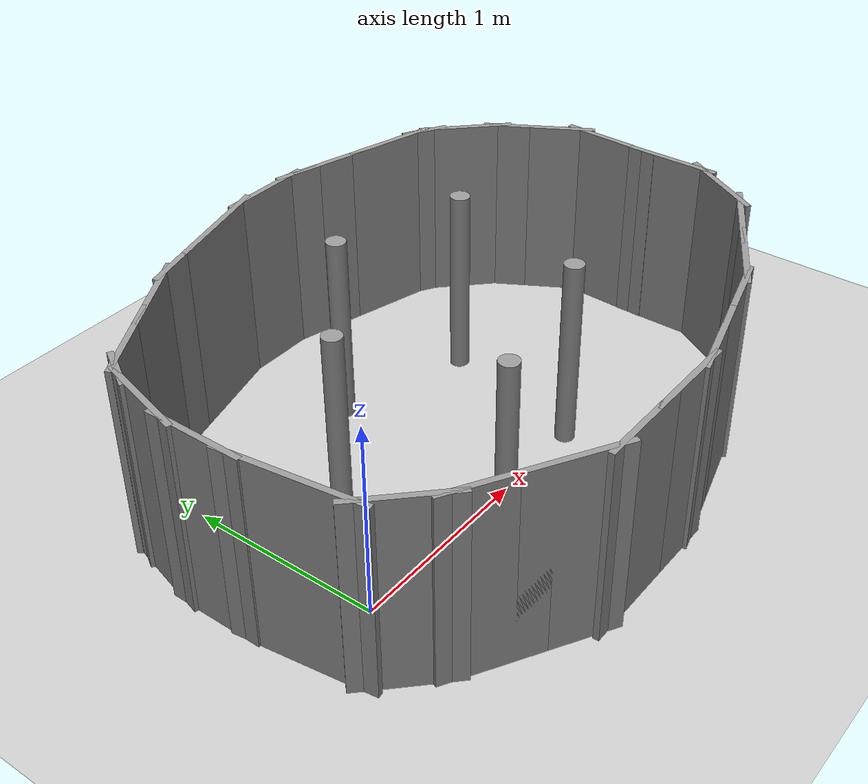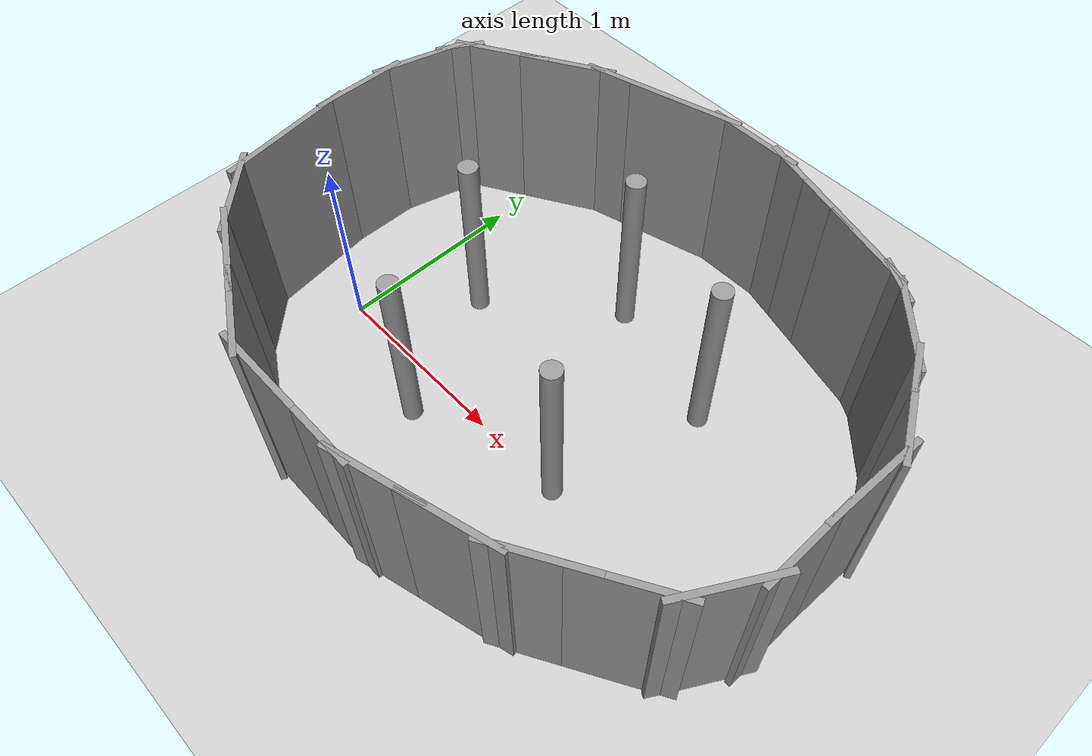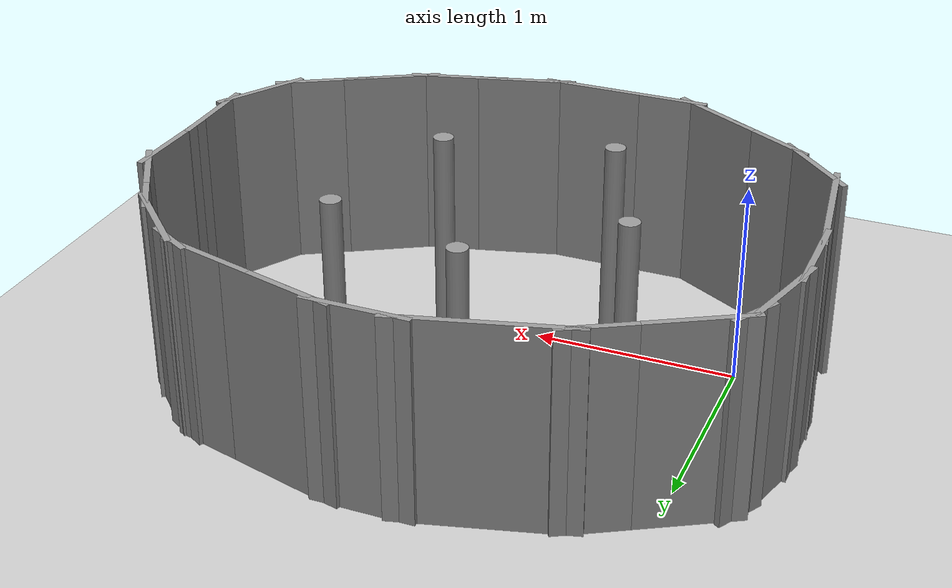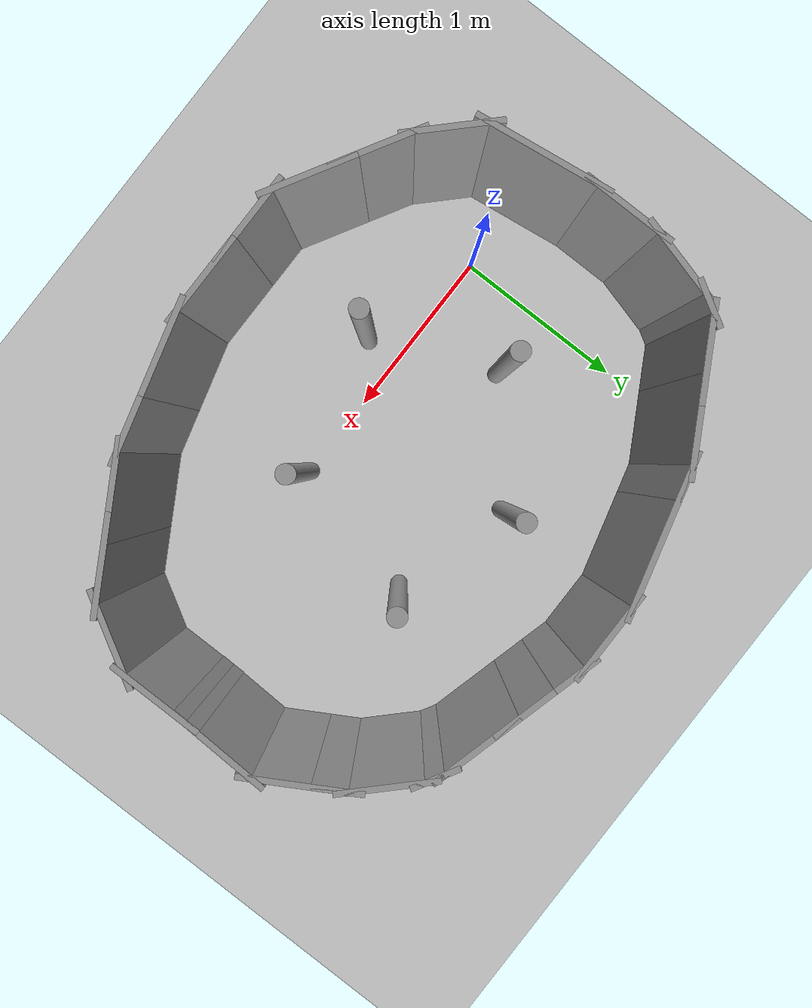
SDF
<?xml version="1.0" ?>
<sdf version='1.6'>
  <world name='default'>
    <model name='cylinder'>
      <pose frame=''>0.4 0.5 0 0 0 0</pose>
      <link name='Cylinder'>
        <collision name='Cylinder_Collision'>
          <geometry>
            <cylinder>
              <radius>0.05</radius>
              <length>1</length>
            </cylinder>
          </geometry>
          <pose frame=''>0 0 0.5 0 -0 0</pose>
        </collision>
        <visual name='Cylinder_Visual'>
          <pose frame=''>0 0 0.5 0 -0 0</pose>
          <geometry>
            <cylinder>
              <radius>0.05</radius>
              <length>1</length>
            </cylinder>
          </geometry>
          <material>
            <script>
              <uri>file://media/materials/scripts/gazebo.material</uri>
              <name>Gazebo/Grey</name>
            </script>
            <ambient>1 1 1 1</ambient>
          </material>
          <meta>
            <layer>0</layer>
          </meta>
        </visual>
      </link>
    </model>
    <model name='cylinder_1'>
      <link name='Cylinder_1'>
        <collision name='Cylinder_Collision_1'>
          <geometry>
            <cylinder>
              <radius>0.05</radius>
              <length>1</length>
            </cylinder>
          </geometry>
          <pose frame=''>0 0 0.5 0 -0 0</pose>
        </collision>
        <visual name='Cylinder_Visual_1'>
          <pose frame=''>0 0 0.5 0 -0 0</pose>
          <geometry>
            <cylinder>
              <radius>0.05</radius>
              <length>1</length>
            </cylinder>
          </geometry>
          <material>
            <script>
              <uri>file://media/materials/scripts/gazebo.material</uri>
              <name>Gazebo/Grey</name>
            </script>
            <ambient>1 1 1 1</ambient>
          </material>
          <meta>
            <layer>0</layer>
          </meta>
        </visual>
      </link>
      <pose frame=''>1.7 0.8 0 0 0 0</pose>
    </model>
    <model name='cylinder_2'>
      <link name='Cylinder'>
        <collision name='Cylinder_Collision'>
          <geometry>
            <cylinder>
              <radius>0.05</radius>
              <length>1</length>
            </cylinder>
          </geometry>
          <pose frame=''>0 0 0.5 0 -0 0</pose>
        </collision>
        <visual name='Cylinder_Visual'>
          <pose frame=''>0 0 0.5 0 -0 0</pose>
          <geometry>
            <cylinder>
              <radius>0.05</radius>
              <length>1</length>
            </cylinder>
          </geometry>
          <material>
            <script>
              <uri>file://media/materials/scripts/gazebo.material</uri>
              <name>Gazebo/Grey</name>
            </script>
            <ambient>1 1 1 1</ambient>
          </material>
          <meta>
            <layer>0</layer>
          </meta>
        </visual>
      </link>
      <pose frame=''>1.5 0 0 0 0 0</pose>
    </model>
    <model name='cylinder_3'>
      <link name='Cylinder'>
        <collision name='Cylinder_Collision'>
          <geometry>
            <cylinder>
              <radius>0.05</radius>
              <length>1</length>
            </cylinder>
          </geometry>
          <pose frame=''>0 0 0.5 0 -0 0</pose>
        </collision>
        <visual name='Cylinder_Visual'>
          <pose frame=''>0 0 0.5 0 -0 0</pose>
          <geometry>
            <cylinder>
              <radius>0.05</radius>
              <length>1</length>
            </cylinder>
          </geometry>
          <material>
            <script>
              <uri>file://media/materials/scripts/gazebo.material</uri>
              <name>Gazebo/Grey</name>
            </script>
            <ambient>1 1 1 1</ambient>
          </material>
          <meta>
            <layer>0</layer>
          </meta>
        </visual>
      </link>
      <pose frame=''>1 1 0 0 0 0</pose>
    </model>
    <model name='cylinder_4'>
      <link name='Cylinder'>
        <collision name='Cylinder_Collision'>
          <geometry>
            <cylinder>
              <radius>0.05</radius>
              <length>1</length>
            </cylinder>
          </geometry>
          <pose frame=''>0 0 0.5 0 -0 0</pose>
        </collision>
        <visual name='Cylinder_Visual'>
          <pose frame=''>0 0 0.5 0 -0 0</pose>
          <geometry>
            <cylinder>
              <radius>0.05</radius>
              <length>1</length>
            </cylinder>
          </geometry>
          <material>
            <script>
              <uri>file://media/materials/scripts/gazebo.material</uri>
              <name>Gazebo/Grey</name>
            </script>
            <ambient>1 1 1 1</ambient>
          </material>
          <meta>
            <layer>0</layer>
          </meta>
        </visual>
      </link>
      <pose frame=''>0.7 -0.2 0 0 0 0</pose>
    </model>
    <include><uri>model://round</uri></include>
    <light name='sun' type='directional'>
      <cast_shadows>1</cast_shadows>
      <pose frame=''>0 0 10 0 -0 0</pose>
      <diffuse>0.8 0.8 0.8 1</diffuse>
      <specular>0.2 0.2 0.2 1</specular>
      <attenuation>
        <range>1000</range>
        <constant>0.9</constant>
        <linear>0.01</linear>
        <quadratic>0.001</quadratic>
      </attenuation>
      <direction>-0.5 0.1 -0.9</direction>
    </light>
    <model name='ground_plane'>
      <static>1</static>
      <link name='link'>
        <collision name='collision'>
          <geometry>
            <plane>
              <normal>0 0 1</normal>
              <size>200 200</size>
            </plane>
          </geometry>
          <surface>
            <friction>
              <ode>
                <mu>100</mu>
                <mu2>50</mu2>
              </ode>
              <torsional>
                <ode/>
              </torsional>
            </friction>
            <contact>
              <ode/>
            </contact>
            <bounce/>
          </surface>
          <max_contacts>10</max_contacts>
        </collision>
        <visual name='visual'>
          <cast_shadows>0</cast_shadows>
          <geometry>
            <plane>
              <normal>0 0 1</normal>
              <size>200 200</size>
            </plane>
          </geometry>
          <material>
            <script>
              <uri>file://media/materials/scripts/gazebo.material</uri>
              <name>Gazebo/Grey</name>
            </script>
          </material>
        </visual>
        <self_collide>0</self_collide>
        <kinematic>0</kinematic>
      </link>
      <pose>0 0 0 0 0 0</pose>
    </model>
    <gravity>0 0 -9.8</gravity>
    <magnetic_field>6e-06 2.3e-05 -4.2e-05</magnetic_field>
    <atmosphere type='adiabatic'/>
    <physics name='default_physics' default='0' type='ode'>
      <max_step_size>0.001</max_step_size>
      <real_time_factor>1</real_time_factor>
      <real_time_update_rate>1000</real_time_update_rate>
    </physics>
    <scene>
      <ambient>0.4 0.4 0.4 1</ambient>
      <background>0.7 0.7 0.7 1</background>
      <shadows>1</shadows>
    </scene>
    <spherical_coordinates>
      <surface_model>EARTH_WGS84</surface_model>
      <latitude_deg>0</latitude_deg>
      <longitude_deg>0</longitude_deg>
      <elevation>0</elevation>
      <heading_deg>0</heading_deg>
    </spherical_coordinates>
    <gui fullscreen='0'>
      <camera name='user_camera'>
        <pose frame=''>2 -24 12 0 0.332 1.62</pose>
        <view_controller>orbit</view_controller>
        <projection_type>perspective</projection_type>
      </camera>
    </gui>
  </world>
</sdf>

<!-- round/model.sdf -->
<sdf version='1.6'>
  <model name='round'>
    <pose frame=''>1.14 0.38 0 0 -0 0</pose>
    <link name='Wall_20'>
      <collision name='Wall_20_Collision'>
        <geometry>
          <box>
            <size>0.5 0.03 1</size>
          </box>
        </geometry>
        <pose frame=''>0 0 0.5 0 -0 0</pose>
      </collision>
      <visual name='Wall_20_Visual'>
        <pose frame=''>0 0 0.5 0 -0 0</pose>
        <geometry>
          <box>
            <size>0.5 0.03 1</size>
          </box>
        </geometry>
        <material>
          <script>
            <uri>file://media/materials/scripts/gazebo.material</uri>
            <name>Gazebo/Grey</name>
          </script>
          <ambient>1 1 1 1</ambient>
        </material>
        <meta>
          <layer>0</layer>
        </meta>
      </visual>
      <pose frame=''>-1.55769 0.109514 0 0 -0 1.5708</pose>
    </link>
    <link name='Wall_21'>
      <collision name='Wall_21_Collision'>
        <geometry>
          <box>
            <size>0.5 0.03 1</size>
          </box>
        </geometry>
        <pose frame=''>0 0 0.5 0 -0 0</pose>
      </collision>
      <visual name='Wall_21_Visual'>
        <pose frame=''>0 0 0.5 0 -0 0</pose>
        <geometry>
          <box>
            <size>0.5 0.03 1</size>
          </box>
        </geometry>
        <material>
          <script>
            <uri>file://media/materials/scripts/gazebo.material</uri>
            <name>Gazebo/Grey</name>
          </script>
          <ambient>1 1 1 1</ambient>
        </material>
        <meta>
          <layer>0</layer>
        </meta>
      </visual>
      <pose frame=''>-1.5124 0.453551 0 0 -0 1.309</pose>
    </link>
    <link name='Wall_22'>
      <collision name='Wall_22_Collision'>
        <geometry>
          <box>
            <size>0.25 0.03 1</size>
          </box>
        </geometry>
        <pose frame=''>0 0 0.5 0 -0 0</pose>
      </collision>
      <visual name='Wall_22_Visual'>
        <pose frame=''>0 0 0.5 0 -0 0</pose>
        <geometry>
          <box>
            <size>0.25 0.03 1</size>
          </box>
        </geometry>
        <material>
          <script>
            <uri>file://media/materials/scripts/gazebo.material</uri>
            <name>Gazebo/Grey</name>
          </script>
          <ambient>1 1 1 1</ambient>
        </material>
        <meta>
          <layer>0</layer>
        </meta>
      </visual>
      <pose frame=''>-1.4421 0.66589 0 0 -0 1.0472</pose>
    </link>
    <link name='Wall_23'>
      <collision name='Wall_23_Collision'>
        <geometry>
          <box>
            <size>0.5 0.03 1</size>
          </box>
        </geometry>
        <pose frame=''>0 0 0.5 0 -0 0</pose>
      </collision>
      <visual name='Wall_23_Visual'>
        <pose frame=''>0 0 0.5 0 -0 0</pose>
        <geometry>
          <box>
            <size>0.5 0.03 1</size>
          </box>
        </geometry>
        <material>
          <script>
            <uri>file://media/materials/scripts/gazebo.material</uri>
            <name>Gazebo/Grey</name>
          </script>
          <ambient>1 1 1 1</ambient>
        </material>
        <meta>
          <layer>0</layer>
        </meta>
      </visual>
      <pose frame=''>-1.26555 0.796691 0 0 -0 0.523599</pose>
    </link>
    <link name='Wall_24'>
      <collision name='Wall_24_Collision'>
        <geometry>
          <box>
            <size>0.5 0.03 1</size>
          </box>
        </geometry>
        <pose frame=''>0 0 0.5 0 -0 0</pose>
      </collision>
      <visual name='Wall_24_Visual'>
        <pose frame=''>0 0 0.5 0 -0 0</pose>
        <geometry>
          <box>
            <size>0.5 0.03 1</size>
          </box>
        </geometry>
        <material>
          <script>
            <uri>file://media/materials/scripts/gazebo.material</uri>
            <name>Gazebo/Grey</name>
          </script>
          <ambient>1 1 1 1</ambient>
        </material>
        <meta>
          <layer>0</layer>
        </meta>
      </visual>
      <pose frame=''>-0.96244 0.971691 0 0 -0 0.523599</pose>
    </link>
    <link name='Wall_25'>
      <collision name='Wall_25_Collision'>
        <geometry>
          <box>
            <size>0.25 0.03 1</size>
          </box>
        </geometry>
        <pose frame=''>0 0 0.5 0 -0 0</pose>
      </collision>
      <visual name='Wall_25_Visual'>
        <pose frame=''>0 0 0.5 0 -0 0</pose>
        <geometry>
          <box>
            <size>0.25 0.03 1</size>
          </box>
        </geometry>
        <material>
          <script>
            <uri>file://media/materials/scripts/gazebo.material</uri>
            <name>Gazebo/Grey</name>
          </script>
          <ambient>1 1 1 1</ambient>
        </material>
        <meta>
          <layer>0</layer>
        </meta>
      </visual>
      <pose frame=''>-0.762589 1.07213 0 0 -0 0.261799</pose>
    </link>
    <link name='Wall_26'>
      <collision name='Wall_26_Collision'>
        <geometry>
          <box>
            <size>0.75 0.03 1</size>
          </box>
        </geometry>
        <pose frame=''>0 0 0.5 0 -0 0</pose>
      </collision>
      <visual name='Wall_26_Visual'>
        <pose frame=''>0 0 0.5 0 -0 0</pose>
        <geometry>
          <box>
            <size>0.75 0.03 1</size>
          </box>
        </geometry>
        <material>
          <script>
            <uri>file://media/materials/scripts/gazebo.material</uri>
            <name>Gazebo/Grey</name>
          </script>
          <ambient>1 1 1 1</ambient>
        </material>
        <meta>
          <layer>0</layer>
        </meta>
      </visual>
      <pose frame=''>-0.424515 1.16272 0 0 -0 0.261799</pose>
    </link>
    <link name='Wall_27'>
      <collision name='Wall_27_Collision'>
        <geometry>
          <box>
            <size>0.5 0.03 1</size>
          </box>
        </geometry>
        <pose frame=''>0 0 0.5 0 -0 0</pose>
      </collision>
      <visual name='Wall_27_Visual'>
        <pose frame=''>0 0 0.5 0 -0 0</pose>
        <geometry>
          <box>
            <size>0.5 0.03 1</size>
          </box>
        </geometry>
        <material>
          <script>
            <uri>file://media/materials/scripts/gazebo.material</uri>
            <name>Gazebo/Grey</name>
          </script>
          <ambient>1 1 1 1</ambient>
        </material>
        <meta>
          <layer>0</layer>
        </meta>
      </visual>
      <pose frame=''>0.040263 1.24036 0 0 -0 0</pose>
    </link>
    <link name='Wall_28'>
      <collision name='Wall_28_Collision'>
        <geometry>
          <box>
            <size>0.25 0.03 1</size>
          </box>
        </geometry>
        <pose frame=''>0 0 0.5 0 -0 0</pose>
      </collision>
      <visual name='Wall_28_Visual'>
        <pose frame=''>0 0 0.5 0 -0 0</pose>
        <geometry>
          <box>
            <size>0.25 0.03 1</size>
          </box>
        </geometry>
        <material>
          <script>
            <uri>file://media/materials/scripts/gazebo.material</uri>
            <name>Gazebo/Grey</name>
          </script>
          <ambient>1 1 1 1</ambient>
        </material>
        <meta>
          <layer>0</layer>
        </meta>
      </visual>
      <pose frame=''>0.263559 1.22742 0 0 0 -0.261799</pose>
    </link>
    <link name='Wall_29'>
      <collision name='Wall_29_Collision'>
        <geometry>
          <box>
            <size>0.5 0.03 1</size>
          </box>
        </geometry>
        <pose frame=''>0 0 0.5 0 -0 0</pose>
      </collision>
      <visual name='Wall_29_Visual'>
        <pose frame=''>0 0 0.5 0 -0 0</pose>
        <geometry>
          <box>
            <size>0.5 0.03 1</size>
          </box>
        </geometry>
        <material>
          <script>
            <uri>file://media/materials/scripts/gazebo.material</uri>
            <name>Gazebo/Grey</name>
          </script>
          <ambient>1 1 1 1</ambient>
        </material>
        <meta>
          <layer>0</layer>
        </meta>
      </visual>
      <pose frame=''>0.480893 1.16919 0 0 0 -0.261799</pose>
    </link>
    <link name='Wall_30'>
      <collision name='Wall_30_Collision'>
        <geometry>
          <box>
            <size>0.5 0.03 1</size>
          </box>
        </geometry>
        <pose frame=''>0 0 0.5 0 -0 0</pose>
      </collision>
      <visual name='Wall_30_Visual'>
        <pose frame=''>0 0 0.5 0 -0 0</pose>
        <geometry>
          <box>
            <size>0.5 0.03 1</size>
          </box>
        </geometry>
        <material>
          <script>
            <uri>file://media/materials/scripts/gazebo.material</uri>
            <name>Gazebo/Grey</name>
          </script>
          <ambient>1 1 1 1</ambient>
        </material>
        <meta>
          <layer>0</layer>
        </meta>
      </visual>
      <pose frame=''>0.818967 1.0786 0 0 0 -0.261799</pose>
    </link>
    <link name='Wall_31'>
      <collision name='Wall_31_Collision'>
        <geometry>
          <box>
            <size>0.25 0.03 1</size>
          </box>
        </geometry>
        <pose frame=''>0 0 0.5 0 -0 0</pose>
      </collision>
      <visual name='Wall_31_Visual'>
        <pose frame=''>0 0 0.5 0 -0 0</pose>
        <geometry>
          <box>
            <size>0.25 0.03 1</size>
          </box>
        </geometry>
        <material>
          <script>
            <uri>file://media/materials/scripts/gazebo.material</uri>
            <name>Gazebo/Grey</name>
          </script>
          <ambient>1 1 1 1</ambient>
        </material>
        <meta>
          <layer>0</layer>
        </meta>
      </visual>
      <pose frame=''>1.0313 1.00831 0 0 0 -0.523599</pose>
    </link>
    <link name='Wall_32'>
      <collision name='Wall_32_Collision'>
        <geometry>
          <box>
            <size>0.5 0.03 1</size>
          </box>
        </geometry>
        <pose frame=''>0 0 0.5 0 -0 0</pose>
      </collision>
      <visual name='Wall_32_Visual'>
        <pose frame=''>0 0 0.5 0 -0 0</pose>
        <geometry>
          <box>
            <size>0.5 0.03 1</size>
          </box>
        </geometry>
        <material>
          <script>
            <uri>file://media/materials/scripts/gazebo.material</uri>
            <name>Gazebo/Grey</name>
          </script>
          <ambient>1 1 1 1</ambient>
        </material>
        <meta>
          <layer>0</layer>
        </meta>
      </visual>
      <pose frame=''>1.19835 0.859565 0 0 0 -0.785398</pose>
    </link>
    <link name='Wall_33'>
      <collision name='Wall_33_Collision'>
        <geometry>
          <box>
            <size>0.25 0.03 1</size>
          </box>
        </geometry>
        <pose frame=''>0 0 0.5 0 -0 0</pose>
      </collision>
      <visual name='Wall_33_Visual'>
        <pose frame=''>0 0 0.5 0 -0 0</pose>
        <geometry>
          <box>
            <size>0.25 0.03 1</size>
          </box>
        </geometry>
        <material>
          <script>
            <uri>file://media/materials/scripts/gazebo.material</uri>
            <name>Gazebo/Grey</name>
          </script>
          <ambient>1 1 1 1</ambient>
        </material>
        <meta>
          <layer>0</layer>
        </meta>
      </visual>
      <pose frame=''>1.34709 0.69252 0 0 0 -1.0472</pose>
    </link>
    <link name='Wall_34'>
      <collision name='Wall_34_Collision'>
        <geometry>
          <box>
            <size>0.5 0.03 1</size>
          </box>
        </geometry>
        <pose frame=''>0 0 0.5 0 -0 0</pose>
      </collision>
      <visual name='Wall_34_Visual'>
        <pose frame=''>0 0 0.5 0 -0 0</pose>
        <geometry>
          <box>
            <size>0.5 0.03 1</size>
          </box>
        </geometry>
        <material>
          <script>
            <uri>file://media/materials/scripts/gazebo.material</uri>
            <name>Gazebo/Grey</name>
          </script>
          <ambient>1 1 1 1</ambient>
        </material>
        <meta>
          <layer>0</layer>
        </meta>
      </visual>
      <pose frame=''>1.45959 0.497665 0 0 0 -1.0472</pose>
    </link>
    <link name='Wall_35'>
      <collision name='Wall_35_Collision'>
        <geometry>
          <box>
            <size>0.541875 0.03 1</size>
          </box>
        </geometry>
        <pose frame=''>0 0 0.5 0 -0 0</pose>
      </collision>
      <visual name='Wall_35_Visual'>
        <pose frame=''>0 0 0.5 0 -0 0</pose>
        <geometry>
          <box>
            <size>0.541875 0.03 1</size>
          </box>
        </geometry>
        <material>
          <script>
            <uri>file://media/materials/scripts/gazebo.material</uri>
            <name>Gazebo/Grey</name>
          </script>
          <ambient>1 1 1 1</ambient>
        </material>
        <meta>
          <layer>0</layer>
        </meta>
      </visual>
      <pose frame=''>1.5397 0.150312 0 0 0 -1.60853</pose>
    </link>
    <link name='Wall_36'>
      <collision name='Wall_36_Collision'>
        <geometry>
          <box>
            <size>0.5 0.03 1</size>
          </box>
        </geometry>
        <pose frame=''>0 0 0.5 0 -0 0</pose>
      </collision>
      <visual name='Wall_36_Visual'>
        <pose frame=''>0 0 0.5 0 -0 0</pose>
        <geometry>
          <box>
            <size>0.5 0.03 1</size>
          </box>
        </geometry>
        <material>
          <script>
            <uri>file://media/materials/scripts/gazebo.material</uri>
            <name>Gazebo/Grey</name>
          </script>
          <ambient>1 1 1 1</ambient>
        </material>
        <meta>
          <layer>0</layer>
        </meta>
      </visual>
      <pose frame=''>1.53231 -0.220486 0 0 0 -1.5708</pose>
    </link>
    <link name='Wall_37'>
      <collision name='Wall_37_Collision'>
        <geometry>
          <box>
            <size>0.5 0.03 1</size>
          </box>
        </geometry>
        <pose frame=''>0 0 0.5 0 -0 0</pose>
      </collision>
      <visual name='Wall_37_Visual'>
        <pose frame=''>0 0 0.5 0 -0 0</pose>
        <geometry>
          <box>
            <size>0.5 0.03 1</size>
          </box>
        </geometry>
        <material>
          <script>
            <uri>file://media/materials/scripts/gazebo.material</uri>
            <name>Gazebo/Grey</name>
          </script>
          <ambient>1 1 1 1</ambient>
        </material>
        <meta>
          <layer>0</layer>
        </meta>
      </visual>
      <pose frame=''>1.44481 -0.54704 0 0 0 -2.0944</pose>
    </link>
    <link name='Wall_38'>
      <collision name='Wall_38_Collision'>
        <geometry>
          <box>
            <size>0.5 0.03 1</size>
          </box>
        </geometry>
        <pose frame=''>0 0 0.5 0 -0 0</pose>
      </collision>
      <visual name='Wall_38_Visual'>
        <pose frame=''>0 0 0.5 0 -0 0</pose>
        <geometry>
          <box>
            <size>0.5 0.03 1</size>
          </box>
        </geometry>
        <material>
          <script>
            <uri>file://media/materials/scripts/gazebo.material</uri>
            <name>Gazebo/Grey</name>
          </script>
          <ambient>1 1 1 1</ambient>
        </material>
        <meta>
          <layer>0</layer>
        </meta>
      </visual>
      <pose frame=''>1.20576 -0.786095 0 0 0 -2.61799</pose>
    </link>
    <link name='Wall_39'>
      <collision name='Wall_39_Collision'>
        <geometry>
          <box>
            <size>0.5 0.03 1</size>
          </box>
        </geometry>
        <pose frame=''>0 0 0.5 0 -0 0</pose>
      </collision>
      <visual name='Wall_39_Visual'>
        <pose frame=''>0 0 0.5 0 -0 0</pose>
        <geometry>
          <box>
            <size>0.5 0.03 1</size>
          </box>
        </geometry>
        <material>
          <script>
            <uri>file://media/materials/scripts/gazebo.material</uri>
            <name>Gazebo/Grey</name>
          </script>
          <ambient>1 1 1 1</ambient>
        </material>
        <meta>
          <layer>0</layer>
        </meta>
      </visual>
      <pose frame=''>0.902647 -0.961095 0 0 0 -2.61799</pose>
    </link>
    <link name='Wall_40'>
      <collision name='Wall_40_Collision'>
        <geometry>
          <box>
            <size>0.5 0.03 1</size>
          </box>
        </geometry>
        <pose frame=''>0 0 0.5 0 -0 0</pose>
      </collision>
      <visual name='Wall_40_Visual'>
        <pose frame=''>0 0 0.5 0 -0 0</pose>
        <geometry>
          <box>
            <size>0.5 0.03 1</size>
          </box>
        </geometry>
        <material>
          <script>
            <uri>file://media/materials/scripts/gazebo.material</uri>
            <name>Gazebo/Grey</name>
          </script>
          <ambient>1 1 1 1</ambient>
        </material>
        <meta>
          <layer>0</layer>
        </meta>
      </visual>
      <pose frame=''>0.582056 -1.09389 0 0 0 -2.87979</pose>
    </link>
    <link name='Wall_41'>
      <collision name='Wall_41_Collision'>
        <geometry>
          <box>
            <size>0.5 0.03 1</size>
          </box>
        </geometry>
        <pose frame=''>0 0 0.5 0 -0 0</pose>
      </collision>
      <visual name='Wall_41_Visual'>
        <pose frame=''>0 0 0.5 0 -0 0</pose>
        <geometry>
          <box>
            <size>0.5 0.03 1</size>
          </box>
        </geometry>
        <material>
          <script>
            <uri>file://media/materials/scripts/gazebo.material</uri>
            <name>Gazebo/Grey</name>
          </script>
          <ambient>1 1 1 1</ambient>
        </material>
        <meta>
          <layer>0</layer>
        </meta>
      </visual>
      <pose frame=''>0.243982 -1.18447 0 0 0 -2.87979</pose>
    </link>
    <link name='Wall_42'>
      <collision name='Wall_42_Collision'>
        <geometry>
          <box>
            <size>0.5 0.03 1</size>
          </box>
        </geometry>
        <pose frame=''>0 0 0.5 0 -0 0</pose>
      </collision>
      <visual name='Wall_42_Visual'>
        <pose frame=''>0 0 0.5 0 -0 0</pose>
        <geometry>
          <box>
            <size>0.5 0.03 1</size>
          </box>
        </geometry>
        <material>
          <script>
            <uri>file://media/materials/scripts/gazebo.material</uri>
            <name>Gazebo/Grey</name>
          </script>
          <ambient>1 1 1 1</ambient>
        </material>
        <meta>
          <layer>0</layer>
        </meta>
      </visual>
      <pose frame=''>-0.100055 -1.22977 0 0 -0 3.14159</pose>
    </link>
    <link name='Wall_43'>
      <collision name='Wall_43_Collision'>
        <geometry>
          <box>
            <size>0.5 0.03 1</size>
          </box>
        </geometry>
        <pose frame=''>0 0 0.5 0 -0 0</pose>
      </collision>
      <visual name='Wall_43_Visual'>
        <pose frame=''>0 0 0.5 0 -0 0</pose>
        <geometry>
          <box>
            <size>0.5 0.03 1</size>
          </box>
        </geometry>
        <material>
          <script>
            <uri>file://media/materials/scripts/gazebo.material</uri>
            <name>Gazebo/Grey</name>
          </script>
          <ambient>1 1 1 1</ambient>
        </material>
        <meta>
          <layer>0</layer>
        </meta>
      </visual>
      <pose frame=''>-0.450055 -1.22977 0 0 -0 3.14159</pose>
    </link>
    <link name='Wall_44'>
      <collision name='Wall_44_Collision'>
        <geometry>
          <box>
            <size>0.5 0.03 1</size>
          </box>
        </geometry>
        <pose frame=''>0 0 0.5 0 -0 0</pose>
      </collision>
      <visual name='Wall_44_Visual'>
        <pose frame=''>0 0 0.5 0 -0 0</pose>
        <geometry>
          <box>
            <size>0.5 0.03 1</size>
          </box>
        </geometry>
        <material>
          <script>
            <uri>file://media/materials/scripts/gazebo.material</uri>
            <name>Gazebo/Grey</name>
          </script>
          <ambient>1 1 1 1</ambient>
        </material>
        <meta>
          <layer>0</layer>
        </meta>
      </visual>
      <pose frame=''>-0.77661 -1.14227 0 0 -0 2.61799</pose>
    </link>
    <link name='Wall_45'>
      <collision name='Wall_45_Collision'>
        <geometry>
          <box>
            <size>0.5 0.03 1</size>
          </box>
        </geometry>
        <pose frame=''>0 0 0.5 0 -0 0</pose>
      </collision>
      <visual name='Wall_45_Visual'>
        <pose frame=''>0 0 0.5 0 -0 0</pose>
        <geometry>
          <box>
            <size>0.5 0.03 1</size>
          </box>
        </geometry>
        <material>
          <script>
            <uri>file://media/materials/scripts/gazebo.material</uri>
            <name>Gazebo/Grey</name>
          </script>
          <ambient>1 1 1 1</ambient>
        </material>
        <meta>
          <layer>0</layer>
        </meta>
      </visual>
      <pose frame=''>-1.07972 -0.967268 0 0 -0 2.61799</pose>
    </link>
    <link name='Wall_46'>
      <collision name='Wall_46_Collision'>
        <geometry>
          <box>
            <size>0.5 0.03 1</size>
          </box>
        </geometry>
        <pose frame=''>0 0 0.5 0 -0 0</pose>
      </collision>
      <visual name='Wall_46_Visual'>
        <pose frame=''>0 0 0.5 0 -0 0</pose>
        <geometry>
          <box>
            <size>0.5 0.03 1</size>
          </box>
        </geometry>
        <material>
          <script>
            <uri>file://media/materials/scripts/gazebo.material</uri>
            <name>Gazebo/Grey</name>
          </script>
          <ambient>1 1 1 1</ambient>
        </material>
        <meta>
          <layer>0</layer>
        </meta>
      </visual>
      <pose frame=''>-1.35502 -0.756024 0 0 -0 2.35619</pose>
    </link>
    <link name='Wall_47'>
      <collision name='Wall_47_Collision'>
        <geometry>
          <box>
            <size>0.722264 0.03 1</size>
          </box>
        </geometry>
        <pose frame=''>0 0 0.5 0 -0 0</pose>
      </collision>
      <visual name='Wall_47_Visual'>
        <pose frame=''>0 0 0.5 0 -0 0</pose>
        <geometry>
          <box>
            <size>0.722264 0.03 1</size>
          </box>
        </geometry>
        <material>
          <script>
            <uri>file://media/materials/scripts/gazebo.material</uri>
            <name>Gazebo/Grey</name>
          </script>
          <ambient>1 1 1 1</ambient>
        </material>
        <meta>
          <layer>0</layer>
        </meta>
      </visual>
      <pose frame=''>-1.51822 -0.348883 0 0 -0 1.70916</pose>
    </link>
    <static>1</static>
  </model>
</sdf>
